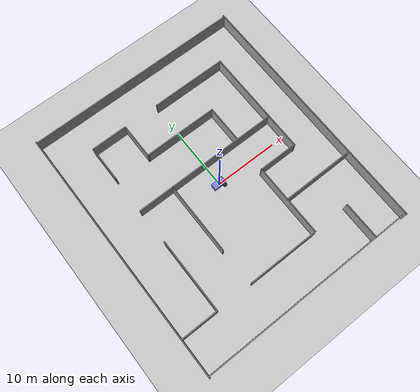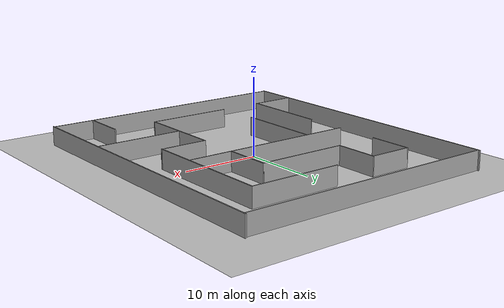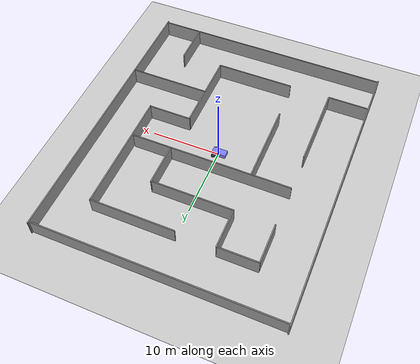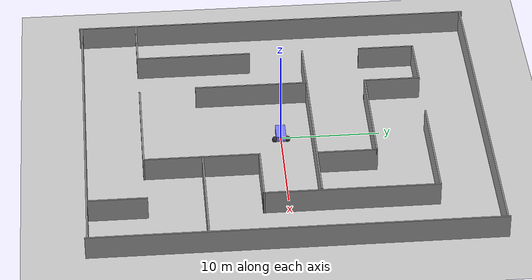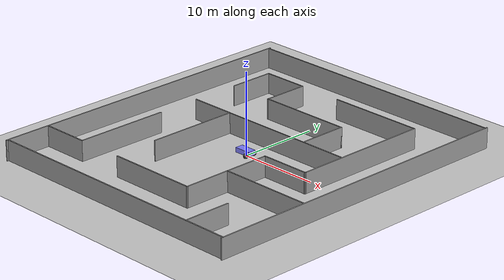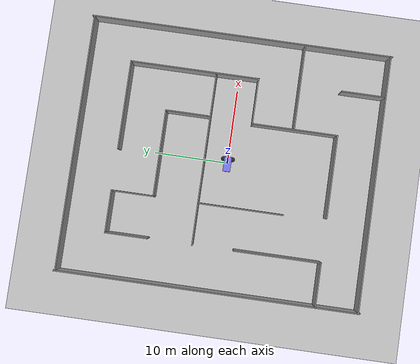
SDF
<?xml version="1.0" ?>
<sdf version="1.8">
  <world name="demo">
    <plugin
      filename="gz-sim-physics-system"
      name="gz::sim::systems::Physics">
    </plugin>
    <plugin
      filename="gz-sim-sensors-system"
      name="gz::sim::systems::Sensors">
      <render_engine>ogre2</render_engine>
    </plugin>
    <plugin
      filename="gz-sim-scene-broadcaster-system"
      name="gz::sim::systems::SceneBroadcaster">
    </plugin>
    <plugin
      filename="gz-sim-user-commands-system"
      name="gz::sim::systems::UserCommands">
    </plugin>
    <plugin
      filename="BasicSystem"
      name="ros_gz_example_gazebo::BasicSystem">
    </plugin>
    <plugin
      filename="FullSystem"
      name="ros_gz_example_gazebo::FullSystem">
    </plugin>

    <model name="ground_plane">
      <static>true</static>
      <link name="link">
        <collision name="collision">
          <geometry>
            <plane>
              <normal>0 0 1</normal>
              <size>100 100</size>
            </plane>
          </geometry>
        </collision>
        <visual name="visual">
          <geometry>
            <plane>
              <normal>0 0 1</normal>
              <size>100 100</size>
            </plane>
          </geometry>
          <material>
            <ambient>0.8 0.8 0.8 1</ambient>
            <diffuse>0.8 0.8 0.8 1</diffuse>
            <specular>0.8 0.8 0.8 1</specular>
          </material>
        </visual>
      </link>
    </model>

    <model name="diff_drive">
      <self_collide>true</self_collide>
      <pose>0 0 0.35 0 0 0</pose>
      <include merge="true">
        <uri>package://ros_gz_example_description/models/diff_drive</uri>
      </include>

      <plugin
        filename="gz-sim-joint-state-publisher-system"
        name="gz::sim::systems::JointStatePublisher">
      </plugin>

      <plugin
        filename="gz-sim-pose-publisher-system"
        name="gz::sim::systems::PosePublisher">
        <publish_link_pose>true</publish_link_pose>
        <use_pose_vector_msg>true</use_pose_vector_msg>
        <static_publisher>true</static_publisher>
        <static_update_frequency>1</static_update_frequency>
      </plugin>

      <plugin
        filename="gz-sim-odometry-publisher-system"
        name="gz::sim::systems::OdometryPublisher">
        <odom_frame>diff_drive/odom</odom_frame>
        <robot_base_frame>diff_drive</robot_base_frame>
      </plugin>
    </model>
    <model name='LABERINTO'>
    <pose>-0.105688 0.378533 0 0 -0 0</pose>
    <link name='Wall_13'>
      <collision name='Wall_13_Collision'>
        <geometry>
          <box>
            <size>12 0.15 2.5</size>
          </box>
        </geometry>
        <pose>0 0 1.25 0 -0 0</pose>
      </collision>
      <visual name='Wall_13_Visual'>
        <pose>0 0 1.25 0 -0 0</pose>
        <geometry>
          <box>
            <size>12 0.15 2.5</size>
          </box>
        </geometry>
        <material>
          <script>
            <uri>file://media/materials/scripts/gazebo.material</uri>
            <name>Gazebo/Grey</name>
          </script>
          <ambient>1 1 1 1</ambient>
        </material>
        <meta>
          <layer>0</layer>
        </meta>
      </visual>
      <pose>5.83828 14.3131 0 0 -0 0</pose>
    </link>
    <link name='Wall_14'>
      <collision name='Wall_14_Collision'>
        <geometry>
          <box>
            <size>17.4315 0.15 2.5</size>
          </box>
        </geometry>
        <pose>0 0 1.25 0 -0 0</pose>
      </collision>
      <visual name='Wall_14_Visual'>
        <pose>0 0 1.25 0 -0 0</pose>
        <geometry>
          <box>
            <size>17.4315 0.15 2.5</size>
          </box>
        </geometry>
        <material>
          <script>
            <uri>file://media/materials/scripts/gazebo.material</uri>
            <name>Gazebo/Grey</name>
          </script>
          <ambient>1 1 1 1</ambient>
        </material>
        <meta>
          <layer>0</layer>
        </meta>
      </visual>
      <pose>11.7633 5.67232 0 0 -0 -1.5708</pose>
    </link>
    <link name='Wall_15'>
      <collision name='Wall_15_Collision'>
        <geometry>
          <box>
            <size>6.25 0.15 2.5</size>
          </box>
        </geometry>
        <pose>0 0 1.25 0 -0 0</pose>
      </collision>
      <visual name='Wall_15_Visual'>
        <pose>0 0 1.25 0 -0 0</pose>
        <geometry>
          <box>
            <size>6.25 0.15 2.5</size>
          </box>
        </geometry>
        <material>
          <script>
            <uri>file://media/materials/scripts/gazebo.material</uri>
            <name>Gazebo/Grey</name>
          </script>
          <ambient>1 1 1 1</ambient>
        </material>
        <meta>
          <layer>0</layer>
        </meta>
      </visual>
      <pose>8.71328 -2.92305 0 0 -0 3.14159</pose>
    </link>
    <link name='Wall_16'>
      <collision name='Wall_16_Collision'>
        <geometry>
          <box>
            <size>11.5685 0.15 2.5</size>
          </box>
        </geometry>
        <pose>0 0 1.25 0 -0 0</pose>
      </collision>
      <visual name='Wall_16_Visual'>
        <pose>0 0 1.25 0 -0 0</pose>
        <geometry>
          <box>
            <size>11.5685 0.15 2.5</size>
          </box>
        </geometry>
        <material>
          <script>
            <uri>file://media/materials/scripts/gazebo.material</uri>
            <name>Gazebo/Grey</name>
          </script>
          <ambient>1 1 1 1</ambient>
        </material>
        <meta>
          <layer>0</layer>
        </meta>
      </visual>
      <pose>5.66328 -8.67768 0 0 -0 -1.5708</pose>
    </link>
    <link name='Wall_17'>
      <collision name='Wall_17_Collision'>
        <geometry>
          <box>
            <size>11.25 0.15 2.5</size>
          </box>
        </geometry>
        <pose>0 0 1.25 0 -0 0</pose>
      </collision>
      <visual name='Wall_17_Visual'>
        <pose>0 0 1.25 0 -0 0</pose>
        <geometry>
          <box>
            <size>11.25 0.15 2.5</size>
          </box>
        </geometry>
        <material>
          <script>
            <uri>file://media/materials/scripts/gazebo.material</uri>
            <name>Gazebo/Grey</name>
          </script>
          <ambient>1 1 1 1</ambient>
        </material>
        <meta>
          <layer>0</layer>
        </meta>
      </visual>
      <pose>0.113282 -14.3869 0 0 -0 3.14159</pose>
    </link>
    <link name='Wall_19'>
      <collision name='Wall_19_Collision'>
        <geometry>
          <box>
            <size>23 0.15 2.5</size>
          </box>
        </geometry>
        <pose>0 0 1.25 0 -0 0</pose>
      </collision>
      <visual name='Wall_19_Visual'>
        <pose>0 0 1.25 0 -0 0</pose>
        <geometry>
          <box>
            <size>23 0.15 2.5</size>
          </box>
        </geometry>
        <material>
          <script>
            <uri>file://media/materials/scripts/gazebo.material</uri>
            <name>Gazebo/Grey</name>
          </script>
          <ambient>1 1 1 1</ambient>
        </material>
        <meta>
          <layer>0</layer>
        </meta>
      </visual>
      <pose>0.057006 2.74447 0 0 -0 3.14159</pose>
    </link>
    <link name='Wall_21'>
      <collision name='Wall_21_Collision'>
        <geometry>
          <box>
            <size>11.5 0.15 2.5</size>
          </box>
        </geometry>
        <pose>0 0 1.25 0 -0 0</pose>
      </collision>
      <visual name='Wall_21_Visual'>
        <pose>0 0 1.25 0 -0 0</pose>
        <geometry>
          <box>
            <size>11.5 0.15 2.5</size>
          </box>
        </geometry>
        <material>
          <script>
            <uri>file://media/materials/scripts/gazebo.material</uri>
            <name>Gazebo/Grey</name>
          </script>
          <ambient>1 1 1 1</ambient>
        </material>
        <meta>
          <layer>0</layer>
        </meta>
      </visual>
      <pose>-5.80316 -2.93094 0 0 -0 -1.5708</pose>
    </link>
    <link name='Wall_25'>
      <collision name='Wall_25_Collision'>
        <geometry>
          <box>
            <size>6 0.15 2.5</size>
          </box>
        </geometry>
        <pose>0 0 1.25 0 -0 0</pose>
      </collision>
      <visual name='Wall_25_Visual'>
        <pose>0 0 1.25 0 -0 0</pose>
        <geometry>
          <box>
            <size>6 0.15 2.5</size>
          </box>
        </geometry>
        <material>
          <script>
            <uri>file://media/materials/scripts/gazebo.material</uri>
            <name>Gazebo/Grey</name>
          </script>
          <ambient>1 1 1 1</ambient>
        </material>
        <meta>
          <layer>0</layer>
        </meta>
      </visual>
      <pose>-14.2657 -14.4053 0 0 -0 0</pose>
    </link>
    <link name='Wall_26'>
      <collision name='Wall_26_Collision'>
        <geometry>
          <box>
            <size>11.75 0.15 2.5</size>
          </box>
        </geometry>
        <pose>0 0 1.25 0 -0 0</pose>
      </collision>
      <visual name='Wall_26_Visual'>
        <pose>0 0 1.25 0 -0 0</pose>
        <geometry>
          <box>
            <size>11.75 0.15 2.5</size>
          </box>
        </geometry>
        <material>
          <script>
            <uri>file://media/materials/scripts/gazebo.material</uri>
            <name>Gazebo/Grey</name>
          </script>
          <ambient>1 1 1 1</ambient>
        </material>
        <meta>
          <layer>0</layer>
        </meta>
      </visual>
      <pose>-11.3407 -8.60528 0 0 -0 1.5708</pose>
    </link>
    <link name='Wall_28'>
      <collision name='Wall_28_Collision'>
        <geometry>
          <box>
            <size>5.75 0.15 2.5</size>
          </box>
        </geometry>
        <pose>0 0 1.25 0 -0 0</pose>
      </collision>
      <visual name='Wall_28_Visual'>
        <pose>0 0 1.25 0 -0 0</pose>
        <geometry>
          <box>
            <size>5.75 0.15 2.5</size>
          </box>
        </geometry>
        <material>
          <script>
            <uri>file://media/materials/scripts/gazebo.material</uri>
            <name>Gazebo/Grey</name>
          </script>
          <ambient>1 1 1 1</ambient>
        </material>
        <meta>
          <layer>0</layer>
        </meta>
      </visual>
      <pose>-11.3381 11.5327 0 0 -0 1.5708</pose>
    </link>
    <link name='Wall_29'>
      <collision name='Wall_29_Collision'>
        <geometry>
          <box>
            <size>5.75 0.15 2.5</size>
          </box>
        </geometry>
        <pose>0 0 1.25 0 -0 0</pose>
      </collision>
      <visual name='Wall_29_Visual'>
        <pose>0 0 1.25 0 -0 0</pose>
        <geometry>
          <box>
            <size>5.75 0.15 2.5</size>
          </box>
        </geometry>
        <material>
          <script>
            <uri>file://media/materials/scripts/gazebo.material</uri>
            <name>Gazebo/Grey</name>
          </script>
          <ambient>1 1 1 1</ambient>
        </material>
        <meta>
          <layer>0</layer>
        </meta>
      </visual>
      <pose>-8.53814 14.3327 0 0 -0 0</pose>
    </link>
    <link name='Wall_30'>
      <collision name='Wall_30_Collision'>
        <geometry>
          <box>
            <size>5.75 0.15 2.5</size>
          </box>
        </geometry>
        <pose>0 0 1.25 0 -0 0</pose>
      </collision>
      <visual name='Wall_30_Visual'>
        <pose>0 0 1.25 0 -0 0</pose>
        <geometry>
          <box>
            <size>5.75 0.15 2.5</size>
          </box>
        </geometry>
        <material>
          <script>
            <uri>file://media/materials/scripts/gazebo.material</uri>
            <name>Gazebo/Grey</name>
          </script>
          <ambient>1 1 1 1</ambient>
        </material>
        <meta>
          <layer>0</layer>
        </meta>
      </visual>
      <pose>-5.73814 11.5327 0 0 -0 -1.5708</pose>
    </link>
    <link name='Wall_31'>
      <collision name='Wall_31_Collision'>
        <geometry>
          <box>
            <size>11.75 0.15 2.5</size>
          </box>
        </geometry>
        <pose>0 0 1.25 0 -0 0</pose>
      </collision>
      <visual name='Wall_31_Visual'>
        <pose>0 0 1.25 0 -0 0</pose>
        <geometry>
          <box>
            <size>11.75 0.15 2.5</size>
          </box>
        </geometry>
        <material>
          <script>
            <uri>file://media/materials/scripts/gazebo.material</uri>
            <name>Gazebo/Grey</name>
          </script>
          <ambient>1 1 1 1</ambient>
        </material>
        <meta>
          <layer>0</layer>
        </meta>
      </visual>
      <pose>0.061864 8.73272 0 0 -0 0</pose>
    </link>
    <link name='Wall_32'>
      <collision name='Wall_32_Collision'>
        <geometry>
          <box>
            <size>6 0.15 2.5</size>
          </box>
        </geometry>
        <pose>0 0 1.25 0 -0 0</pose>
      </collision>
      <visual name='Wall_32_Visual'>
        <pose>0 0 1.25 0 -0 0</pose>
        <geometry>
          <box>
            <size>6 0.15 2.5</size>
          </box>
        </geometry>
        <material>
          <script>
            <uri>file://media/materials/scripts/gazebo.material</uri>
            <name>Gazebo/Grey</name>
          </script>
          <ambient>1 1 1 1</ambient>
        </material>
        <meta>
          <layer>0</layer>
        </meta>
      </visual>
      <pose>5.86186 5.80772 0 0 -0 -1.5708</pose>
    </link>
    <link name='Wall_34'>
      <collision name='Wall_34_Collision'>
        <geometry>
          <box>
            <size>40.75 0.15 2.5</size>
          </box>
        </geometry>
        <pose>0 0 1.25 0 -0 0</pose>
      </collision>
      <visual name='Wall_34_Visual'>
        <pose>0 0 1.25 0 -0 0</pose>
        <geometry>
          <box>
            <size>40.75 0.15 2.5</size>
          </box>
        </geometry>
        <material>
          <script>
            <uri>file://media/materials/scripts/gazebo.material</uri>
            <name>Gazebo/Grey</name>
          </script>
          <ambient>1 1 1 1</ambient>
        </material>
        <meta>
          <layer>0</layer>
        </meta>
      </visual>
      <pose>-17.1907 0 0 0 -0 -1.5708</pose>
    </link>
    <link name='Wall_35'>
      <collision name='Wall_35_Collision'>
        <geometry>
          <box>
            <size>34.5 0.15 2.5</size>
          </box>
        </geometry>
        <pose>0 0 1.25 0 -0 0</pose>
      </collision>
      <visual name='Wall_35_Visual'>
        <pose>0 0 1.25 0 -0 0</pose>
        <geometry>
          <box>
            <size>34.5 0.15 2.5</size>
          </box>
        </geometry>
        <material>
          <script>
            <uri>file://media/materials/scripts/gazebo.material</uri>
            <name>Gazebo/Grey</name>
          </script>
          <ambient>1 1 1 1</ambient>
        </material>
        <meta>
          <layer>0</layer>
        </meta>
      </visual>
      <pose>0 -20.1055 0 0 -0 0</pose>
    </link>
    <link name='Wall_36'>
      <collision name='Wall_36_Collision'>
        <geometry>
          <box>
            <size>6 0.15 2.5</size>
          </box>
        </geometry>
        <pose>0 0 1.25 0 -0 0</pose>
      </collision>
      <visual name='Wall_36_Visual'>
        <pose>0 0 1.25 0 -0 0</pose>
        <geometry>
          <box>
            <size>6 0.15 2.5</size>
          </box>
        </geometry>
        <material>
          <script>
            <uri>file://media/materials/scripts/gazebo.material</uri>
            <name>Gazebo/Grey</name>
          </script>
          <ambient>1 1 1 1</ambient>
        </material>
        <meta>
          <layer>0</layer>
        </meta>
      </visual>
      <pose>11.6593 -17.1805 0 0 -0 1.5708</pose>
    </link>
    <link name='Wall_5'>
      <collision name='Wall_5_Collision'>
        <geometry>
          <box>
            <size>34.5 0.15 2.5</size>
          </box>
        </geometry>
        <pose>0 0 1.25 0 -0 0</pose>
      </collision>
      <visual name='Wall_5_Visual'>
        <pose>0 0 1.25 0 -0 0</pose>
        <geometry>
          <box>
            <size>34.5 0.15 2.5</size>
          </box>
        </geometry>
        <material>
          <script>
            <uri>file://media/materials/scripts/gazebo.material</uri>
            <name>Gazebo/Grey</name>
          </script>
          <ambient>1 1 1 1</ambient>
        </material>
        <meta>
          <layer>0</layer>
        </meta>
      </visual>
      <pose>0 20.1055 0 0 -0 0</pose>
    </link>
    <link name='Wall_7'>
      <collision name='Wall_7_Collision'>
        <geometry>
          <box>
            <size>40.75 0.15 2.5</size>
          </box>
        </geometry>
        <pose>0 0 1.25 0 -0 0</pose>
      </collision>
      <visual name='Wall_7_Visual'>
        <pose>0 0 1.25 0 -0 0</pose>
        <geometry>
          <box>
            <size>40.75 0.15 2.5</size>
          </box>
        </geometry>
        <material>
          <script>
            <uri>file://media/materials/scripts/gazebo.material</uri>
            <name>Gazebo/Grey</name>
          </script>
          <ambient>1 1 1 1</ambient>
        </material>
        <meta>
          <layer>0</layer>
        </meta>
      </visual>
      <pose>17.1907 0 0 0 -0 -1.5708</pose>
    </link>
    <link name='Wall_9'>
      <collision name='Wall_9_Collision'>
        <geometry>
          <box>
            <size>11.5 0.15 2.5</size>
          </box>
        </geometry>
        <pose>0 0 1.25 0 -0 0</pose>
      </collision>
      <visual name='Wall_9_Visual'>
        <pose>0 0 1.25 0 -0 0</pose>
        <geometry>
          <box>
            <size>11.5 0.15 2.5</size>
          </box>
        </geometry>
        <material>
          <script>
            <uri>file://media/materials/scripts/gazebo.material</uri>
            <name>Gazebo/Grey</name>
          </script>
          <ambient>1 1 1 1</ambient>
        </material>
        <meta>
          <layer>0</layer>
        </meta>
      </visual>
      <pose>11.4408 -8.55273 0 0 -0 0</pose>
    </link>
    <static>1</static>
  </model>

  </world>
</sdf>

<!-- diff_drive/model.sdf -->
<sdf version="1.8">
    <model name='diff_drive'>
      <link name='chassis'>
        <pose>-0.151427 -0 0.175 0 -0 0</pose>
        <inertial>
          <mass>1.14395</mass>
          <inertia>
            <ixx>0.126164</ixx>
            <ixy>0</ixy>
            <ixz>0</ixz>
            <iyy>0.416519</iyy>
            <iyz>0</iyz>
            <izz>0.481014</izz>
          </inertia>
        </inertial>
        <visual name='visual_chassis'>
          <geometry>
            <box>
              <size>2.01142 1 0.568726</size>
            </box>
          </geometry>
          <material>
            <ambient>0.5 0.5 1.0 1</ambient>
            <diffuse>0.5 0.5 1.0 1</diffuse>
            <specular>0.0 0.0 1.0 1</specular>
          </material>
        </visual>
        <collision name='collision_chassis'>
          <geometry>
            <box>
              <size>2.01142 1 0.568726</size>
            </box>
          </geometry>
        </collision>
      </link>

      <link name='left_wheel'>
        <pose>0.554283 0.625029 -0.025 -1.5707 0 0</pose>
        <inertial>
          <mass>2</mass>
          <inertia>
            <ixx>0.145833</ixx>
            <ixy>0</ixy>
            <ixz>0</ixz>
            <iyy>0.145833</iyy>
            <iyz>0</iyz>
            <izz>0.125</izz>
          </inertia>
        </inertial>
        <visual name='visual_left_wheel'>
          <geometry>
            <sphere>
              <radius>0.3</radius>
            </sphere>
          </geometry>
          <material>
            <ambient>0.2 0.2 0.2 1</ambient>
            <diffuse>0.2 0.2 0.2 1</diffuse>
            <specular>0.2 0.2 0.2 1</specular>
          </material>
        </visual>
        <collision name='collision_left_wheel'>
          <geometry>
            <sphere>
              <radius>0.3</radius>
            </sphere>
          </geometry>
        </collision>
      </link>

      <link name='right_wheel'>
        <pose>0.554282 -0.625029 -0.025 -1.5707 0 0</pose>
        <inertial>
          <mass>2</mass>
          <inertia>
            <ixx>0.145833</ixx>
            <ixy>0</ixy>
            <ixz>0</ixz>
            <iyy>0.145833</iyy>
            <iyz>0</iyz>
            <izz>0.125</izz>
          </inertia>
        </inertial>
        <visual name='visual_right_wheel'>
          <geometry>
            <sphere>
              <radius>0.3</radius>
            </sphere>
          </geometry>
          <material>
            <ambient>0.2 0.2 0.2 1</ambient>
            <diffuse>0.2 0.2 0.2 1</diffuse>
            <specular>0.2 0.2 0.2 1</specular>
          </material>
        </visual>
        <collision name='collision_right_wheel'>
          <geometry>
            <sphere>
              <radius>0.3</radius>
            </sphere>
          </geometry>
        </collision>
      </link>

      <link name='caster'>
        <pose>-0.957138 -0 -0.125 0 -0 0</pose>
        <inertial>
          <mass>1</mass>
          <inertia>
            <ixx>0.1</ixx>
            <ixy>0</ixy>
            <ixz>0</ixz>
            <iyy>0.1</iyy>
            <iyz>0</iyz>
            <izz>0.1</izz>
          </inertia>
        </inertial>
        <visual name='visual_caster'>
          <geometry>
            <sphere>
              <radius>0.2</radius>
            </sphere>
          </geometry>
          <material>
            <ambient>0.2 0.2 0.2 1</ambient>
            <diffuse>0.2 0.2 0.2 1</diffuse>
            <specular>0.2 0.2 0.2 1</specular>
          </material>
        </visual>
        <collision name='collision_caster'>
          <geometry>
            <sphere>
              <radius>0.2</radius>
            </sphere>
          </geometry>
        </collision>
      </link>

      <link name="lidar_link">
        <pose>0 0 0.5 0 0 0</pose>
        <inertial>
          <mass>0.1</mass>
          <inertia>
            <ixx>0.000166667</ixx>
            <iyy>0.000166667</iyy>
            <izz>0.000166667</izz>
          </inertia>
        </inertial>
        <collision name="collision">
          <geometry>
            <box>
              <size>0.1 0.1 0.1</size>
            </box>
          </geometry>
        </collision>
        <visual name="visual">
          <geometry>
            <box>
              <size>0.1 0.1 0.1</size>
            </box>
          </geometry>
        </visual>
        <sensor name='gpu_lidar' type='gpu_lidar'>
          <pose>0 0 0 0 0 0</pose>
          <topic>scan</topic>
           <gz_frame_id>diff_drive/lidar_link</gz_frame_id>
          <update_rate>10</update_rate>
          <lidar>
            <scan>
              <horizontal>
                <samples>640</samples>
                <resolution>1</resolution>
                <min_angle>-1.396263</min_angle>
                <max_angle>1.396263</max_angle>
              </horizontal>
              <vertical>
                <samples>1</samples>
                <resolution>1</resolution>
                <min_angle>0.0</min_angle>
                <max_angle>0.0</max_angle>
              </vertical>
            </scan>
            <range>
              <min>0.08</min>
              <max>15.0</max>
              <resolution>0.01</resolution>
            </range>
          </lidar>
          <visualize>true</visualize>
        </sensor>
      </link>

      <joint name='lidar_joint' type='fixed'>
        <parent>chassis</parent>
        <child>lidar_link</child>
      </joint>

      <joint name='left_wheel_joint' type='revolute'>
        <parent>chassis</parent>
        <child>left_wheel</child>
        <axis>
          <xyz>0 0 1</xyz>
          <limit>
            <lower>-1.79769e+308</lower>
            <upper>1.79769e+308</upper>
          </limit>
        </axis>
      </joint>

      <joint name='right_wheel_joint' type='revolute'>
        <parent>chassis</parent>
        <child>right_wheel</child>
        <axis>
          <xyz>0 0 1</xyz>
          <limit>
            <lower>-1.79769e+308</lower>
            <upper>1.79769e+308</upper>
          </limit>
        </axis>
      </joint>

      <joint name='caster_wheel' type='ball'>
        <parent>chassis</parent>
        <child>caster</child>
      </joint>

      <plugin
        filename="ignition-gazebo-diff-drive-system"
        name="ignition::gazebo::systems::DiffDrive">
        <left_joint>left_wheel_joint</left_joint>
        <right_joint>right_wheel_joint</right_joint>
        <wheel_separation>1.25</wheel_separation>
        <wheel_radius>0.3</wheel_radius>
        <odom_publish_frequency>1</odom_publish_frequency>
        <max_linear_acceleration>1</max_linear_acceleration>
        <min_linear_acceleration>-1</min_linear_acceleration>
        <max_angular_acceleration>2</max_angular_acceleration>
        <min_angular_acceleration>-2</min_angular_acceleration>
        <max_linear_velocity>0.5</max_linear_velocity>
        <min_linear_velocity>-0.5</min_linear_velocity>
        <max_angular_velocity>1</max_angular_velocity>
        <min_angular_velocity>-1</min_angular_velocity>
      </plugin>
    </model>
</sdf>
